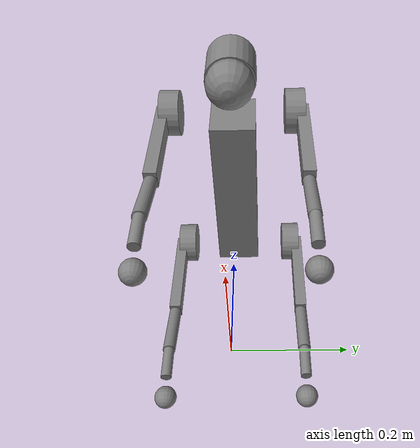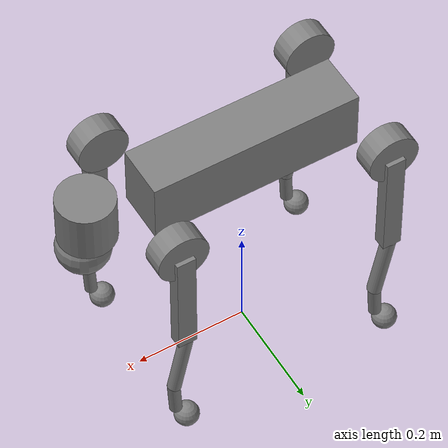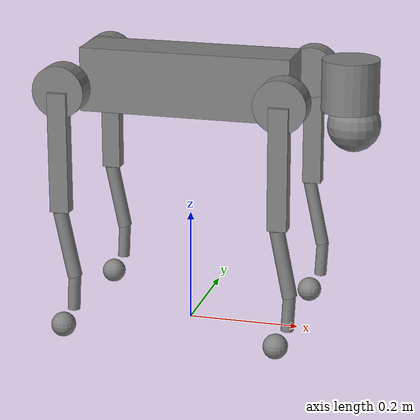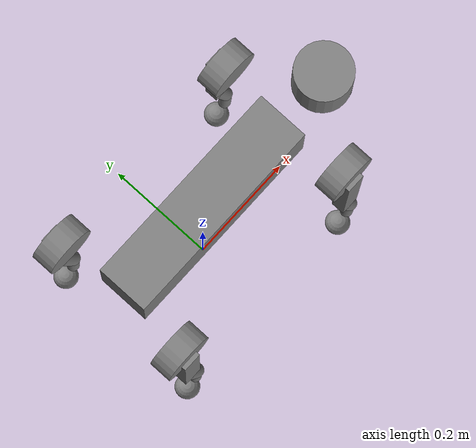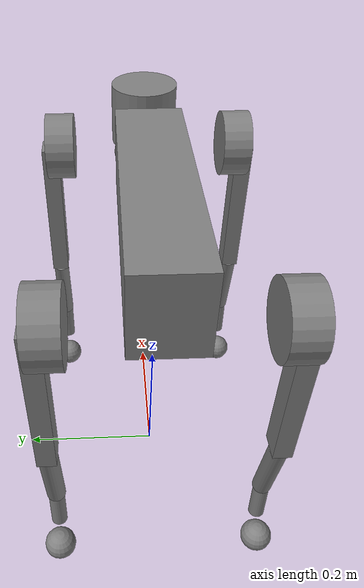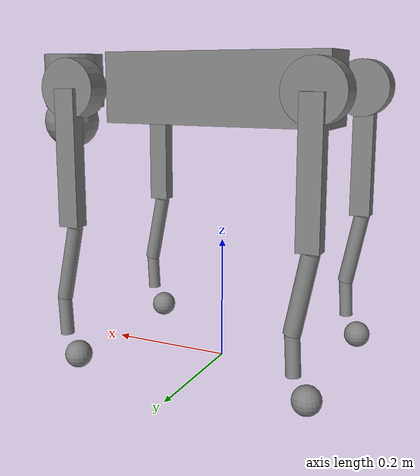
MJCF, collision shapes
<mujoco model="Unitree Go2">
  <compiler angle="radian" meshdir="assets" autolimits="true"/>

  <option cone="elliptic" impratio="100" integrator="implicitfast" timestep="0.0001"/>

  <default>
    <default class="go2">
      <geom friction="0.6" margin="0.001" condim="1"/>
      <joint axis="0 1 0" damping="2" armature="0.01" frictionloss="0.2"/>

      <!-- Abduction Joint -->
      <default class="abduction">
        <joint axis="1 0 0" range="-1.0472 1.0472" actuatorfrcrange="-23.7 23.7"/>
        <position kp="60" kv="5" ctrllimited="true" ctrlrange="-1.0472 1.0472"/>
      </default>

      <!-- Front Hip Joints -->
      <default class="front_hip">
        <joint range="-1.5708 3.4907" actuatorfrcrange="-23.7 23.7"/>
        <position kp="60" kv="5" ctrllimited="true" ctrlrange="-1.5708 3.4907"/>
      </default>

      <!-- Back Hip Joints -->
      <default class="back_hip">
        <joint range="-0.5236 4.5379" actuatorfrcrange="-23.7 23.7"/>
        <position kp="60" kv="5" ctrllimited="true" ctrlrange="-0.5236 4.5379"/>
      </default>

      <!-- Knee Joint -->
      <default class="knee">
        <joint range="-2.7227 -0.83776" actuatorfrcrange="-45.43 45.43"/>
        <position kp="60" kv="5" ctrllimited="true" ctrlrange="-2.7227 -0.83776"/>
      </default>

      <!-- Visual -->
      <default class="visual">
        <geom type="mesh" contype="0" conaffinity="0" group="2"/>
      </default>

      <!-- Collision -->
      <default class="collision">
        <geom group="3" contype="0" conaffinity="0"/>
        <default class="foot">
          <geom size="0.022" pos="-0.002 0 -0.213" priority="1" solimp="0.015 1 0.022" condim="3" friction="0.8 0.02 0.01"/>
        </default>
      </default>
    </default>

    <default class="task">
      <site rgba="1 0 0 1" size=".02" group="5"/>
      <default class="flight">
        <site rgba="1 .3 .3 1" size="0.019" group="5"/>
      </default>
      <default class="stance">
        <site rgba=".3 1 .3 1" size=".018" group="4"/>
      </default>
    </default>
  </default>

  <asset>
    <material name="metal" rgba=".9 .95 .95 1" />
    <material name="black" rgba="0 0 0 1" />
    <material name="white" rgba="1 1 1 1" />
    <material name="gray" rgba="0.671705 0.692426 0.774270 1" />

    <mesh file="base_0.obj" />
    <mesh file="base_1.obj" />
    <mesh file="base_2.obj" />
    <mesh file="base_3.obj" />
    <mesh file="base_4.obj" />
    <mesh file="hip_0.obj" />
    <mesh file="hip_1.obj" />
    <mesh file="thigh_0.obj" />
    <mesh file="thigh_1.obj" />
    <mesh file="thigh_mirror_0.obj" />
    <mesh file="thigh_mirror_1.obj" />
    <mesh file="calf_0.obj" />
    <mesh file="calf_1.obj" />
    <mesh file="calf_mirror_0.obj" />
    <mesh file="calf_mirror_1.obj" />
    <mesh file="foot.obj" />
  </asset>

  <worldbody>
    <!-- GO2 robot with consistent names and inertial tuned to GO2 -->
    <body name="trunk" pos="0 0 0.445" childclass="go2">
      <inertial pos="0.021112 0 -0.005366" quat="-0.000543471 0.713435 -0.00173769 0.700719"
        mass="6.921"
        diaginertia="0.107027 0.0980771 0.0244531" />
      <freejoint/>

      <geom mesh="base_0" material="black" class="visual" />
      <geom mesh="base_1" material="black" class="visual" />
      <geom mesh="base_2" material="black" class="visual" />
      <geom mesh="base_3" material="white" class="visual" />
      <geom mesh="base_4" material="gray"  class="visual" />
      <geom name="trunk_box_coll" size="0.1881 0.04675 0.057" type="box" class="collision" contype="32" conaffinity="0" />
      <geom name="head_cyl" size="0.05 0.045" pos="0.285 0 0.01" type="cylinder" class="collision" contype="64" conaffinity="0"/>
      <geom name="lidar_sph" size="0.047" pos="0.293 0 -0.06" class="collision" contype="128" conaffinity="0"/>

      <site name="imu" pos="-0.02557 0 0.04232" />

      <!-- mjpc compatibility -->
      <site name="torso"/>
      <site name="head" pos=".3 0 0" class="task" size="5"/>

      <!-- Front Left Leg -->
      <body name="FL_hip" pos="0.1934 0.0465 0">
        <inertial pos="-0.0054 0.00194 -0.000105" quat="0.497014 0.499245 0.505462 0.498237"
          mass="0.678"
          diaginertia="0.00088403 0.000596003 0.000479967" />
        <joint name="FL_hip_joint" class="abduction" />
        <geom mesh="hip_0" material="metal" class="visual" />
        <geom mesh="hip_1" material="gray" class="visual" />
        <geom name="FL_hip_cyl" size="0.046 0.02" pos="0 0.08 0" quat="1 1 0 0" type="cylinder" class="collision" contype="256" conaffinity="0"/>
        <body name="FL_thigh" pos="0 0.0955 0">
          <inertial pos="-0.00374 -0.0223 -0.0327" quat="0.829533 0.0847635 -0.0200632 0.551623"
            mass="1.152"
            diaginertia="0.00594973 0.00584149 0.000878787" />
          <joint name="FL_thigh_joint" class="front_hip" />
          <geom mesh="thigh_0" material="metal" class="visual" />
          <geom mesh="thigh_1" material="gray" class="visual" />
          <geom name="FL_thigh_box" size="0.1065 0.01225 0.017" pos="0 0 -0.1065" quat="0.707107 0 0.707107 0"
            type="box" class="collision" contype="512" conaffinity="0" />
          <body name="FL_calf" pos="0 0 -0.213">
            <inertial pos="0.00629595 -0.000622121 -0.141417"
              quat="0.710672 0.00154099 -0.00450087 0.703508"
              mass="0.241352" diaginertia="0.0014901 0.00146356 5.31397e-05" />
            <joint name="FL_calf_joint" class="knee" />
            <geom mesh="calf_0" material="gray" class="visual" />
            <geom mesh="calf_1" material="black" class="visual" />
            <geom name="FL_calf_cyl1" size="0.012 0.06" pos="0.008 0 -0.06" quat="0.994493 0 -0.104807 0"
              type="cylinder" class="collision" contype="1024" conaffinity="0"/>
            <geom name="FL_calf_cyl2" size="0.011 0.0325" pos="0.02 0 -0.148" quat="0.999688 0 0.0249974 0"
              type="cylinder" class="collision" contype="2048" conaffinity="0"/>

            <geom pos="0 0 -0.213" mesh="foot" class="visual" material="black" />
            <geom name="FL" class="foot" contype="2" conaffinity="0" />
            <body name="FL_foot" pos="0 0 -0.213" />
            <site name="FL" pos="0 0 -0.213" />
          </body>
        </body>
      </body>

      <!-- Front Right Leg -->
      <body name="FR_hip" pos="0.1934 -0.0465 0">
        <inertial pos="-0.0054 -0.00194 -0.000105" quat="0.498237 0.505462 0.499245 0.497014"
          mass="0.678"
          diaginertia="0.00088403 0.000596003 0.000479967" />
        <joint name="FR_hip_joint" class="abduction" />
        <geom mesh="hip_0" material="metal" class="visual" quat="4.63268e-05 1 0 0" />
        <geom mesh="hip_1" material="gray" class="visual" quat="4.63268e-05 1 0 0" />
        <geom name="FR_hip_cyl" size="0.046 0.02" pos="0 -0.08 0" quat="0.707107 0.707107 0 0" type="cylinder"
          class="collision" contype="4096" conaffinity="0" />
        <body name="FR_thigh" pos="0 -0.0955 0">
          <inertial pos="-0.00374 0.0223 -0.0327" quat="0.551623 -0.0200632 0.0847635 0.829533"
            mass="1.152"
            diaginertia="0.00594973 0.00584149 0.000878787" />
          <joint name="FR_thigh_joint" class="front_hip" />
          <geom mesh="thigh_mirror_0" material="metal" class="visual" />
          <geom mesh="thigh_mirror_1" material="gray" class="visual" />
          <geom name="FR_thigh_box" size="0.1065 0.01225 0.017" pos="0 0 -0.1065" quat="0.707107 0 0.707107 0"
            type="box" class="collision" contype="8192" conaffinity="0" />
          <body name="FR_calf" pos="0 0 -0.213">
            <inertial pos="0.00629595 0.000622121 -0.141417"
              quat="0.703508 -0.00450087 0.00154099 0.710672"
              mass="0.241352" diaginertia="0.0014901 0.00146356 5.31397e-05" />
            <joint name="FR_calf_joint" class="knee" />
            <geom mesh="calf_mirror_0" material="gray" class="visual" />
            <geom mesh="calf_mirror_1" material="black" class="visual" />
            <geom name="FR_calf_cyl1" size="0.013 0.06" pos="0.01 0 -0.06" quat="0.995004 0 -0.0998334 0"
              type="cylinder" class="collision" contype="16384" conaffinity="0"/>
            <geom name="FR_calf_cyl2" size="0.011 0.0325" pos="0.02 0 -0.148" quat="0.999688 0 0.0249974 0"
              type="cylinder" class="collision" contype="32768" conaffinity="0"/>
            <geom pos="0 0 -0.213" mesh="foot" class="visual" material="black" />
            <geom name="FR" class="foot" contype="4" conaffinity="0" />
            <body name="FR_foot" pos="0 0 -0.213" />

            <site name="FR" pos="0 0 -0.213" />
          </body>
        </body>
      </body>

      <!-- Hind Left Leg (HL) -->
      <body name="HL_hip" pos="-0.1934 0.0465 0">
        <inertial pos="0.0054 0.00194 -0.000105" quat="0.505462 0.498237 0.497014 0.499245"
          mass="0.678"
          diaginertia="0.00088403 0.000596003 0.000479967" />
        <joint name="HL_hip_joint" class="abduction" />
        <geom mesh="hip_0" material="metal" class="visual" quat="4.63268e-05 0 1 0" />
        <geom mesh="hip_1" material="gray" class="visual" quat="4.63268e-05 0 1 0" />
        <geom name="HL_hip_cyl" size="0.046 0.02" pos="0 0.08 0" quat="0.707107 0.707107 0 0" type="cylinder"
          class="collision" contype="65536" conaffinity="0" />
        <body name="HL_thigh" pos="0 0.0955 0">
          <inertial pos="-0.00374 -0.0223 -0.0327" quat="0.829533 0.0847635 -0.0200632 0.551623"
            mass="1.152"
            diaginertia="0.00594973 0.00584149 0.000878787" />
          <joint name="HL_thigh_joint" class="back_hip" />
          <geom mesh="thigh_0" material="metal" class="visual" />
          <geom mesh="thigh_1" material="gray" class="visual" />
          <geom name="HL_thigh_box" size="0.1065 0.01225 0.017" pos="0 0 -0.1065" quat="0.707107 0 0.707107 0"
            type="box" class="collision" contype="131072" conaffinity="0" />
          <body name="HL_calf" pos="0 0 -0.213">
            <inertial pos="0.00629595 -0.000622121 -0.141417"
              quat="0.710672 0.00154099 -0.00450087 0.703508"
              mass="0.241352" diaginertia="0.0014901 0.00146356 5.31397e-05" />
            <joint name="HL_calf_joint" class="knee" />
            <geom mesh="calf_0" material="gray" class="visual" />
            <geom mesh="calf_1" material="black" class="visual" />
            <geom name="HL_calf_cyl1" size="0.013 0.06" pos="0.01 0 -0.06" quat="0.995004 0 -0.0998334 0"
              type="cylinder" class="collision" contype="262144" conaffinity="0"/>
            <geom name="HL_calf_cyl2" size="0.011 0.0325" pos="0.02 0 -0.148" quat="0.999688 0 0.0249974 0"
              type="cylinder" class="collision" contype="524288" conaffinity="0"/>
            <geom pos="0 0 -0.213" mesh="foot" class="visual" material="black" />
            <geom name="HL" class="foot" contype="8" conaffinity="0" />
            <body name="HL_foot" pos="0 0 -0.213" />

            <site name="HL" pos="0 0 -0.213" />
          </body>
        </body>
      </body>

      <!-- Hind Right Leg (HR) -->
      <body name="HR_hip" pos="-0.1934 -0.0465 0">
        <inertial pos="0.0054 -0.00194 -0.000105" quat="0.499245 0.497014 0.498237 0.505462"
          mass="0.678"
          diaginertia="0.00088403 0.000596003 0.000479967" />
        <joint name="HR_hip_joint" class="abduction" />
        <geom mesh="hip_0" material="metal" class="visual"
          quat="2.14617e-09 4.63268e-05 4.63268e-05 -1" />
        <geom mesh="hip_1" material="gray" class="visual"
          quat="2.14617e-09 4.63268e-05 4.63268e-05 -1" />
        <geom name="HR_hip_cyl" size="0.046 0.02" pos="0 -0.08 0" quat="0.707107 0.707107 0 0" type="cylinder"
          class="collision" contype="1048576" conaffinity="0" />
        <body name="HR_thigh" pos="0 -0.0955 0">
          <inertial pos="-0.00374 0.0223 -0.0327" quat="0.551623 -0.0200632 0.0847635 0.829533"
            mass="1.152"
            diaginertia="0.00594973 0.00584149 0.000878787" />
          <joint name="HR_thigh_joint" class="back_hip" />
          <geom mesh="thigh_mirror_0" material="metal" class="visual" />
          <geom mesh="thigh_mirror_1" material="gray" class="visual" />
          <geom name="HR_thigh_box" size="0.1065 0.01225 0.017" pos="0 0 -0.1065" quat="0.707107 0 0.707107 0"
            type="box" class="collision" contype="2097152" conaffinity="0" />
          <body name="HR_calf" pos="0 0 -0.213">
            <inertial pos="0.00629595 0.000622121 -0.141417"
              quat="0.703508 -0.00450087 0.00154099 0.710672"
              mass="0.241352" diaginertia="0.0014901 0.00146356 5.31397e-05" />
            <joint name="HR_calf_joint" class="knee" />
            <geom mesh="calf_mirror_0" material="gray" class="visual" />
            <geom mesh="calf_mirror_1" material="black" class="visual" />
            <geom name="HR_calf_cyl1" size="0.013 0.06" pos="0.01 0 -0.06" quat="0.995004 0 -0.0998334 0"
              type="cylinder" class="collision" contype="4194304" conaffinity="0"/>
            <geom name="HR_calf_cyl2" size="0.011 0.0325" pos="0.02 0 -0.148" quat="0.999688 0 0.0249974 0"
              type="cylinder" class="collision" contype="8388608" conaffinity="0"/>
            <geom pos="0 0 -0.213" mesh="foot" class="visual" material="black" />
            <geom name="HR" class="foot" contype="16" conaffinity="0" />
            <body name="HR_foot" pos="0 0 -0.213" />

            <site name="HR" pos="0 0 -0.213" />
          </body>
        </body>
      </body>
    </body>
  </worldbody>

<!-- Sensors -->
<sensor>
    <user name="Upright" dim="3" user="6 1 0 3 0.05"/>
    <user name="Height" dim="1" user="6 1 0 3 0.04"/>
    <user name="Position" dim="3" user="2 0.2 0 0.5 0.1"/>
    <user name="Gait" dim="4" user="6 2 0 10 0.03"/>
    <user name="Balance" dim="2" user="2 0.2 0 0.3 0.1"/>
    <user name="Velocity" dim="1" user="2 0.1 0 5 0.1"/>
    <user name="Effort" dim="12" user="0 0.03 0.0 0.1"/>
    <user name="Posture" dim="12" user="0 0.02 0.0 0.1"/>
    <user name="Orientation" dim="2" user="0 0 0 .03"/>
    <user name="Angmom" dim="3" user="0 0 0 .03"/>

    <!-- ours -->
    <user name="FootCost" dim="4" user="2 0 0 0.2 0.1"/>
    <user name="NormClear" dim="10" user="2 4.0 0 5 0.1"/>

    <jointpos name="pos_FR_hip_joint" joint="FR_hip_joint"/>
    <jointpos name="pos_FR_thigh_joint" joint="FR_thigh_joint"/>
    <jointpos name="pos_FR_calf_joint" joint="FR_calf_joint"/>
    <jointpos name="pos_FL_hip_joint" joint="FL_hip_joint"/>
    <jointpos name="pos_FL_thigh_joint" joint="FL_thigh_joint"/>
    <jointpos name="pos_FL_calf_joint" joint="FL_calf_joint"/>
    <jointpos name="pos_HR_hip_joint" joint="HR_hip_joint"/>
    <jointpos name="pos_HR_thigh_joint" joint="HR_thigh_joint"/>
    <jointpos name="pos_HR_calf_joint" joint="HR_calf_joint"/>
    <jointpos name="pos_HL_hip_joint" joint="HL_hip_joint"/>
    <jointpos name="pos_HL_thigh_joint" joint="HL_thigh_joint"/>
    <jointpos name="pos_HL_calf_joint" joint="HL_calf_joint"/>

    <jointvel name="FR_hip_vel" joint="FR_hip_joint" />
    <jointvel name="FR_thigh_vel" joint="FR_thigh_joint" />
    <jointvel name="FR_calf_vel" joint="FR_calf_joint" />
    <jointvel name="FL_hip_vel" joint="FL_hip_joint" />
    <jointvel name="FL_thigh_vel" joint="FL_thigh_joint" />
    <jointvel name="FL_calf_vel" joint="FL_calf_joint" />
    <jointvel name="HR_hip_vel" joint="HR_hip_joint" />
    <jointvel name="HR_thigh_vel" joint="HR_thigh_joint" />
    <jointvel name="HR_calf_vel" joint="HR_calf_joint" />
    <jointvel name="HL_hip_vel" joint="HL_hip_joint" />
    <jointvel name="HL_thigh_vel" joint="HL_thigh_joint" />
    <jointvel name="HL_calf_vel" joint="HL_calf_joint" />

    <jointactuatorfrc name="FR_hip_torque" joint="FR_hip_joint" noise="0.01" />
    <jointactuatorfrc name="FR_thigh_torque" joint="FR_thigh_joint" noise="0.01" />
    <jointactuatorfrc name="FR_calf_torque" joint="FR_calf_joint" noise="0.01" />
    <jointactuatorfrc name="FL_hip_torque" joint="FL_hip_joint" noise="0.01" />
    <jointactuatorfrc name="FL_thigh_torque" joint="FL_thigh_joint" noise="0.01" />
    <jointactuatorfrc name="FL_calf_torque" joint="FL_calf_joint" noise="0.01" />
    <jointactuatorfrc name="HR_hip_torque" joint="HR_hip_joint" noise="0.01" />
    <jointactuatorfrc name="HR_thigh_torque" joint="HR_thigh_joint" noise="0.01" />
    <jointactuatorfrc name="HR_calf_torque" joint="HR_calf_joint" noise="0.01" />
    <jointactuatorfrc name="HL_hip_torque" joint="HL_hip_joint" noise="0.01" />
    <jointactuatorfrc name="HL_thigh_torque" joint="HL_thigh_joint" noise="0.01" />
    <jointactuatorfrc name="HL_calf_torque" joint="HL_calf_joint" noise="0.01" />

    <framequat name="imu_quat" objtype="site" objname="imu"/>
    <gyro name="imu_gyro" site="imu"/>
    <accelerometer name="imu_acc" site="imu"/>

    <framepos name="frame_pos" objtype="site" objname="imu"/>
    <framelinvel name="frame_vel" objtype="site" objname="imu"/>

    <!-- mjpc -->
    <framepos name="torso_pos" objtype="site" objname="torso"/>
    <framepos name="FR_pos" objtype="site" objname="FR"/>
    <framepos name="FL_pos" objtype="site" objname="FL"/>
    <framepos name="HR_pos" objtype="site" objname="HR"/>
    <framepos name="HL_pos" objtype="site" objname="HL"/>
    <framepos name="trace0" objtype="site" objname="head"/>

    <touch name="FR_touch" site="FR"/>
    <touch name="FL_touch" site="FL"/>
    <touch name="HR_touch" site="HR"/>
    <touch name="HL_touch" site="HL"/>

    <subtreecom name="torso_subtreecom" body="trunk"/>
    <subtreelinvel name="torso_subtreelinvel" body="trunk"/>
    <subtreelinvel name="torso_angmom" body="trunk"/>
</sensor>

<actuator>
	<position class="abduction" name="FR_hip" joint="FR_hip_joint"/>
	<position class="front_hip" name="FR_thigh" joint="FR_thigh_joint"/>
	<position class="knee" name="FR_calf" joint="FR_calf_joint"/>
	<position class="abduction" name="FL_hip" joint="FL_hip_joint"/>
	<position class="front_hip" name="FL_thigh" joint="FL_thigh_joint"/>
	<position class="knee" name="FL_calf" joint="FL_calf_joint"/>
	<position class="abduction" name="HR_hip" joint="HR_hip_joint"/>
	<position class="back_hip" name="HR_thigh" joint="HR_thigh_joint"/>
	<position class="knee" name="HR_calf" joint="HR_calf_joint"/>
	<position class="abduction" name="HL_hip" joint="HL_hip_joint"/>
	<position class="back_hip" name="HL_thigh" joint="HL_thigh_joint"/>
	<position class="knee" name="HL_calf" joint="HL_calf_joint"/>
</actuator>

</mujoco>
